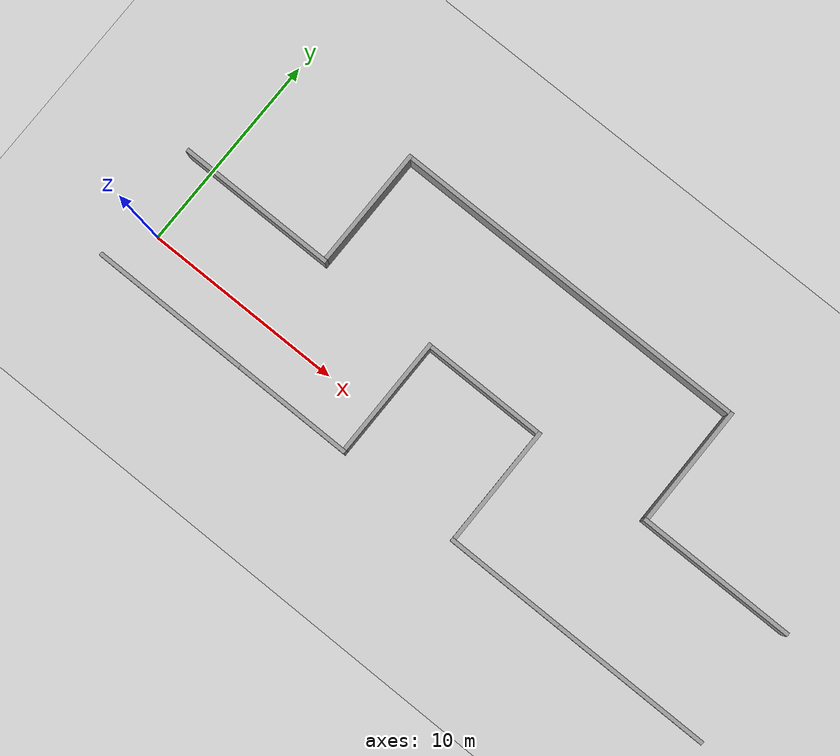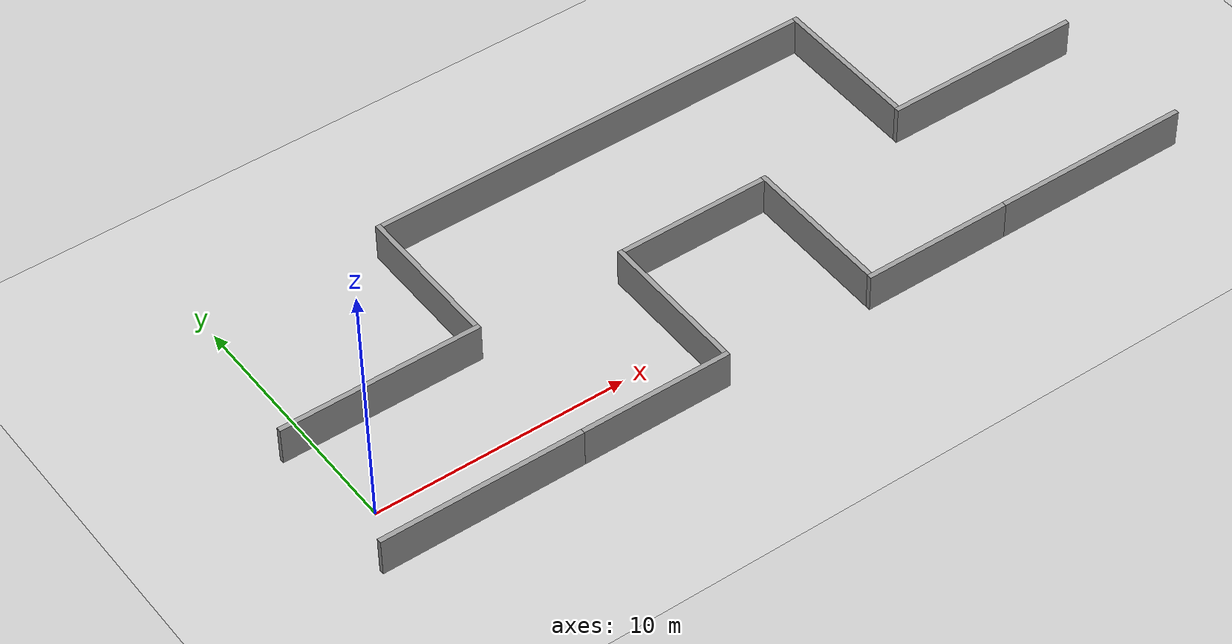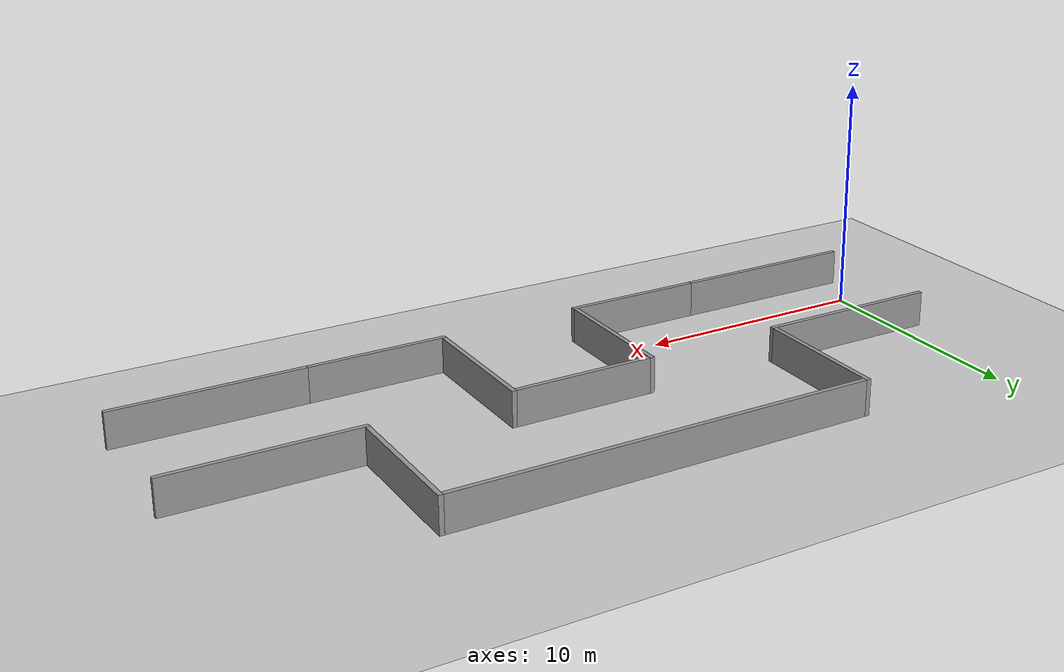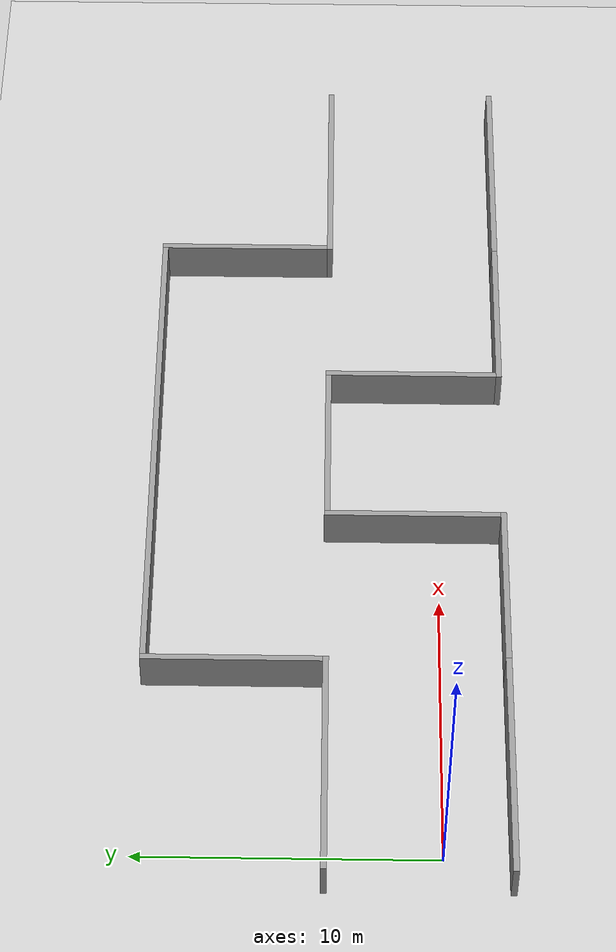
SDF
<sdf version="1.6">
 <world name="default">
  <light name="sun" type="directional">
   <pose>0 0 10 0 -0 0</pose>
   <diffuse>0.8 0.8 0.8 1</diffuse>
   <specular>0.2 0.2 0.2 1</specular>
   <attenuation>
    <range>1000</range>
    <constant>0.9</constant>
    <linear>0.01</linear>
    <quadratic>0.001</quadratic>
   </attenuation>
   <direction>-0.5 0.1 -0.9</direction>
  </light>
  <model name="ground_plane">
   <static>1</static>
   <link name="link">
    <collision name="collision">
     <geometry><plane><normal>0 0 1</normal><size>100 100</size></plane></geometry>
     <surface>
      <contact><collide_bitmask>65535</collide_bitmask></contact>
      <friction><ode><mu>100</mu><mu2>50</mu2></ode></friction>
     </surface>
    </collision>
    <visual name="visual">
     <cast_shadows>0</cast_shadows>
     <geometry><plane><normal>0 0 1</normal><size>100 100</size></plane></geometry>
     <material>
      <script><uri>file://media/materials/scripts/gazebo.material</uri><name>Gazebo/Grey</name></script>
     </material>
    </visual>
   </link>
  </model>
  <gravity>0 0 -9.8</gravity>
  <magnetic_field>6e-06 2.3e-05 -4.2e-05</magnetic_field>
  <atmosphere type="adiabatic"/>
  <physics name="default_physics" default="0" type="ode">
   <max_step_size>0.001</max_step_size>
   <real_time_factor>1</real_time_factor>
   <real_time_update_rate>1000</real_time_update_rate>
  </physics>
  <scene><ambient>0.4 0.4 0.4 1</ambient><background>0.7 0.7 0.7 1</background><shadows>1</shadows></scene>
  <audio><device>default</device></audio>
  <spherical_coordinates>
   <surface_model>EARTH_WGS84</surface_model>
   <latitude_deg>0</latitude_deg>
   <longitude_deg>0</longitude_deg>
   <elevation>0</elevation>
   <heading_deg>0</heading_deg>
  </spherical_coordinates>
  <model name="Corr816">
   <link name="link_1">
    <inertial>
     <mass>1</mass>
     <inertia>
      <ixx>0.166667</ixx>
      <ixy>0</ixy>
      <ixz>0</ixz>
      <iyy>0.166667</iyy>
      <iyz>0</iyz>
      <izz>0.166667</izz>
     </inertia>
    </inertial>
    <pose>-0.206551 0.808921 0 0 -0 0</pose>
    <visual name="visual">
     <geometry><box><size>8 0.2 2</size></box></geometry>
     <material>
      <lighting>1</lighting>
      <script><uri>file://media/materials/scripts/gazebo.material</uri><name>Gazebo/Grey</name></script>
      <shader type="vertex"><normal_map>__default__</normal_map></shader>
      <ambient>0.3 0.3 0.3 1</ambient>
      <diffuse>0.7 0.7 0.7 1</diffuse>
      <specular>0.01 0.01 0.01 1</specular>
      <emissive>0 0 0 1</emissive>
     </material>
    </visual>
    <collision name="collision">
     <geometry><box><size>8 0.2 2</size></box></geometry>
     <surface>
      <friction>
       <ode><mu>1</mu><mu2>1</mu2><fdir1>0 0 0</fdir1><slip1>0</slip1><slip2>0</slip2></ode>
       <torsional>
        <coefficient>1</coefficient>
        <patch_radius>0</patch_radius>
        <surface_radius>0</surface_radius>
        <use_patch_radius>1</use_patch_radius>
        <ode><slip>0</slip></ode>
       </torsional>
      </friction>
      <bounce><restitution_coefficient>0</restitution_coefficient><threshold>1e+06</threshold></bounce>
      <contact>
       <collide_without_contact>0</collide_without_contact>
       <collide_without_contact_bitmask>1</collide_without_contact_bitmask>
       <collide_bitmask>1</collide_bitmask>
       <ode>
        <soft_cfm>0</soft_cfm>
        <soft_erp>0.2</soft_erp>
        <kp>1e+13</kp>
        <kd>1</kd>
        <max_vel>0.01</max_vel>
        <min_depth>0</min_depth>
       </ode>
       <bullet>
        <split_impulse>1</split_impulse>
        <split_impulse_penetration_threshold>-0.01</split_impulse_penetration_threshold>
        <soft_cfm>0</soft_cfm>
        <soft_erp>0.2</soft_erp>
        <kp>1e+13</kp>
        <kd>1</kd>
       </bullet>
      </contact>
     </surface>
    </collision>
   </link>
   <link name="link_1_clone">
    <inertial>
     <mass>1</mass>
     <inertia>
      <ixx>0.166667</ixx>
      <ixy>0</ixy>
      <ixz>0</ixz>
      <iyy>0.166667</iyy>
      <iyz>0</iyz>
      <izz>0.166667</izz>
     </inertia>
    </inertial>
    <pose>25.7934 0.808921 0 0 -0 0</pose>
    <visual name="visual">
     <geometry><box><size>8 0.2 2</size></box></geometry>
     <material>
      <lighting>1</lighting>
      <script><uri>file://media/materials/scripts/gazebo.material</uri><name>Gazebo/Grey</name></script>
      <shader type="vertex"><normal_map>__default__</normal_map></shader>
      <ambient>0.3 0.3 0.3 1</ambient>
      <diffuse>0.7 0.7 0.7 1</diffuse>
      <specular>0.01 0.01 0.01 1</specular>
      <emissive>0 0 0 1</emissive>
     </material>
    </visual>
    <collision name="collision">
     <geometry><box><size>8 0.2 2</size></box></geometry>
     <surface>
      <friction>
       <ode><mu>1</mu><mu2>1</mu2><fdir1>0 0 0</fdir1><slip1>0</slip1><slip2>0</slip2></ode>
       <torsional>
        <coefficient>1</coefficient>
        <patch_radius>0</patch_radius>
        <surface_radius>0</surface_radius>
        <use_patch_radius>1</use_patch_radius>
        <ode><slip>0</slip></ode>
       </torsional>
      </friction>
      <bounce><restitution_coefficient>0</restitution_coefficient><threshold>1e+06</threshold></bounce>
      <contact>
       <collide_without_contact>0</collide_without_contact>
       <collide_without_contact_bitmask>1</collide_without_contact_bitmask>
       <collide_bitmask>1</collide_bitmask>
       <ode>
        <soft_cfm>0</soft_cfm>
        <soft_erp>0.2</soft_erp>
        <kp>1e+13</kp>
        <kd>1</kd>
        <max_vel>0.01</max_vel>
        <min_depth>0</min_depth>
       </ode>
       <bullet>
        <split_impulse>1</split_impulse>
        <split_impulse_penetration_threshold>-0.01</split_impulse_penetration_threshold>
        <soft_cfm>0</soft_cfm>
        <soft_erp>0.2</soft_erp>
        <kp>1e+13</kp>
        <kd>1</kd>
       </bullet>
      </contact>
     </surface>
    </collision>
   </link>
   <link name="link_1_clone_clone">
    <inertial>
     <mass>1</mass>
     <inertia>
      <ixx>0.166667</ixx>
      <ixy>0</ixy>
      <ixz>0</ixz>
      <iyy>0.166667</iyy>
      <iyz>0</iyz>
      <izz>0.166667</izz>
     </inertia>
    </inertial>
    <pose>25.7934 6.80892 0 0 -0 0</pose>
    <visual name="visual">
     <geometry><box><size>8 0.2 2</size></box></geometry>
     <material>
      <lighting>1</lighting>
      <script><uri>file://media/materials/scripts/gazebo.material</uri><name>Gazebo/Grey</name></script>
      <shader type="vertex"><normal_map>__default__</normal_map></shader>
      <ambient>0.3 0.3 0.3 1</ambient>
      <diffuse>0.7 0.7 0.7 1</diffuse>
      <specular>0.01 0.01 0.01 1</specular>
      <emissive>0 0 0 1</emissive>
     </material>
    </visual>
    <collision name="collision">
     <geometry><box><size>8 0.2 2</size></box></geometry>
     <surface>
      <friction>
       <ode><mu>1</mu><mu2>1</mu2><fdir1>0 0 0</fdir1><slip1>0</slip1><slip2>0</slip2></ode>
       <torsional>
        <coefficient>1</coefficient>
        <patch_radius>0</patch_radius>
        <surface_radius>0</surface_radius>
        <use_patch_radius>1</use_patch_radius>
        <ode><slip>0</slip></ode>
       </torsional>
      </friction>
      <bounce><restitution_coefficient>0</restitution_coefficient><threshold>1e+06</threshold></bounce>
      <contact>
       <collide_without_contact>0</collide_without_contact>
       <collide_without_contact_bitmask>1</collide_without_contact_bitmask>
       <collide_bitmask>1</collide_bitmask>
       <ode>
        <soft_cfm>0</soft_cfm>
        <soft_erp>0.2</soft_erp>
        <kp>1e+13</kp>
        <kd>1</kd>
        <max_vel>0.01</max_vel>
        <min_depth>0</min_depth>
       </ode>
       <bullet>
        <split_impulse>1</split_impulse>
        <split_impulse_penetration_threshold>-0.01</split_impulse_penetration_threshold>
        <soft_cfm>0</soft_cfm>
        <soft_erp>0.2</soft_erp>
        <kp>1e+13</kp>
        <kd>1</kd>
       </bullet>
      </contact>
     </surface>
    </collision>
   </link>
   <link name="link_3">
    <inertial>
     <mass>1</mass>
     <inertia>
      <ixx>0.166667</ixx>
      <ixy>0</ixy>
      <ixz>0</ixz>
      <iyy>0.166667</iyy>
      <iyz>0</iyz>
      <izz>0.166667</izz>
     </inertia>
    </inertial>
    <pose>6.79345 0.808921 0 0 -0 0</pose>
    <visual name="visual">
     <geometry><box><size>6 0.2 2</size></box></geometry>
     <material>
      <lighting>1</lighting>
      <script><uri>file://media/materials/scripts/gazebo.material</uri><name>Gazebo/Grey</name></script>
      <shader type="vertex"><normal_map>__default__</normal_map></shader>
      <ambient>0.3 0.3 0.3 1</ambient>
      <diffuse>0.7 0.7 0.7 1</diffuse>
      <specular>0.01 0.01 0.01 1</specular>
      <emissive>0 0 0 1</emissive>
     </material>
    </visual>
    <collision name="collision">
     <geometry><box><size>6 0.2 2</size></box></geometry>
     <surface>
      <friction>
       <ode><mu>1</mu><mu2>1</mu2><fdir1>0 0 0</fdir1><slip1>0</slip1><slip2>0</slip2></ode>
       <torsional>
        <coefficient>1</coefficient>
        <patch_radius>0</patch_radius>
        <surface_radius>0</surface_radius>
        <use_patch_radius>1</use_patch_radius>
        <ode><slip>0</slip></ode>
       </torsional>
      </friction>
      <bounce><restitution_coefficient>0</restitution_coefficient><threshold>1e+06</threshold></bounce>
      <contact>
       <collide_without_contact>0</collide_without_contact>
       <collide_without_contact_bitmask>1</collide_without_contact_bitmask>
       <collide_bitmask>1</collide_bitmask>
       <ode>
        <soft_cfm>0</soft_cfm>
        <soft_erp>0.2</soft_erp>
        <kp>1e+13</kp>
        <kd>1</kd>
        <max_vel>0.01</max_vel>
        <min_depth>0</min_depth>
       </ode>
       <bullet>
        <split_impulse>1</split_impulse>
        <split_impulse_penetration_threshold>-0.01</split_impulse_penetration_threshold>
        <soft_cfm>0</soft_cfm>
        <soft_erp>0.2</soft_erp>
        <kp>1e+13</kp>
        <kd>1</kd>
       </bullet>
      </contact>
     </surface>
    </collision>
   </link>
   <link name="link_3_clone">
    <inertial>
     <mass>1</mass>
     <inertia>
      <ixx>0.166667</ixx>
      <ixy>0</ixy>
      <ixz>0</ixz>
      <iyy>0.166667</iyy>
      <iyz>0</iyz>
      <izz>0.166667</izz>
     </inertia>
    </inertial>
    <pose>18.7934 0.808921 0 0 -0 0</pose>
    <visual name="visual">
     <geometry><box><size>6 0.2 2</size></box></geometry>
     <material>
      <lighting>1</lighting>
      <script><uri>file://media/materials/scripts/gazebo.material</uri><name>Gazebo/Grey</name></script>
      <shader type="vertex"><normal_map>__default__</normal_map></shader>
      <ambient>0.3 0.3 0.3 1</ambient>
      <diffuse>0.7 0.7 0.7 1</diffuse>
      <specular>0.01 0.01 0.01 1</specular>
      <emissive>0 0 0 1</emissive>
     </material>
    </visual>
    <collision name="collision">
     <geometry><box><size>6 0.2 2</size></box></geometry>
     <surface>
      <friction>
       <ode><mu>1</mu><mu2>1</mu2><fdir1>0 0 0</fdir1><slip1>0</slip1><slip2>0</slip2></ode>
       <torsional>
        <coefficient>1</coefficient>
        <patch_radius>0</patch_radius>
        <surface_radius>0</surface_radius>
        <use_patch_radius>1</use_patch_radius>
        <ode><slip>0</slip></ode>
       </torsional>
      </friction>
      <bounce><restitution_coefficient>0</restitution_coefficient><threshold>1e+06</threshold></bounce>
      <contact>
       <collide_without_contact>0</collide_without_contact>
       <collide_without_contact_bitmask>1</collide_without_contact_bitmask>
       <collide_bitmask>1</collide_bitmask>
       <ode>
        <soft_cfm>0</soft_cfm>
        <soft_erp>0.2</soft_erp>
        <kp>1e+13</kp>
        <kd>1</kd>
        <max_vel>0.01</max_vel>
        <min_depth>0</min_depth>
       </ode>
       <bullet>
        <split_impulse>1</split_impulse>
        <split_impulse_penetration_threshold>-0.01</split_impulse_penetration_threshold>
        <soft_cfm>0</soft_cfm>
        <soft_erp>0.2</soft_erp>
        <kp>1e+13</kp>
        <kd>1</kd>
       </bullet>
      </contact>
     </surface>
    </collision>
   </link>
   <link name="link_3_clone_0">
    <inertial>
     <mass>1</mass>
     <inertia>
      <ixx>0.166667</ixx>
      <ixy>0</ixy>
      <ixz>0</ixz>
      <iyy>0.166667</iyy>
      <iyz>0</iyz>
      <izz>0.166667</izz>
     </inertia>
    </inertial>
    <pose>9.69345 3.90892 0 0 -0 1.5708</pose>
    <visual name="visual">
     <geometry><box><size>6 0.2 2</size></box></geometry>
     <material>
      <lighting>1</lighting>
      <script><uri>file://media/materials/scripts/gazebo.material</uri><name>Gazebo/Grey</name></script>
      <shader type="vertex"><normal_map>__default__</normal_map></shader>
      <ambient>0.3 0.3 0.3 1</ambient>
      <diffuse>0.7 0.7 0.7 1</diffuse>
      <specular>0.01 0.01 0.01 1</specular>
      <emissive>0 0 0 1</emissive>
     </material>
    </visual>
    <collision name="collision">
     <geometry><box><size>6 0.2 2</size></box></geometry>
     <surface>
      <friction>
       <ode><mu>1</mu><mu2>1</mu2><fdir1>0 0 0</fdir1><slip1>0</slip1><slip2>0</slip2></ode>
       <torsional>
        <coefficient>1</coefficient>
        <patch_radius>0</patch_radius>
        <surface_radius>0</surface_radius>
        <use_patch_radius>1</use_patch_radius>
        <ode><slip>0</slip></ode>
       </torsional>
      </friction>
      <bounce><restitution_coefficient>0</restitution_coefficient><threshold>1e+06</threshold></bounce>
      <contact>
       <collide_without_contact>0</collide_without_contact>
       <collide_without_contact_bitmask>1</collide_without_contact_bitmask>
       <collide_bitmask>1</collide_bitmask>
       <ode>
        <soft_cfm>0</soft_cfm>
        <soft_erp>0.2</soft_erp>
        <kp>1e+13</kp>
        <kd>1</kd>
        <max_vel>0.01</max_vel>
        <min_depth>0</min_depth>
       </ode>
       <bullet>
        <split_impulse>1</split_impulse>
        <split_impulse_penetration_threshold>-0.01</split_impulse_penetration_threshold>
        <soft_cfm>0</soft_cfm>
        <soft_erp>0.2</soft_erp>
        <kp>1e+13</kp>
        <kd>1</kd>
       </bullet>
      </contact>
     </surface>
    </collision>
   </link>
   <link name="link_3_clone_0_clone">
    <inertial>
     <mass>1</mass>
     <inertia>
      <ixx>0.166667</ixx>
      <ixy>0</ixy>
      <ixz>0</ixz>
      <iyy>0.166667</iyy>
      <iyz>0</iyz>
      <izz>0.166667</izz>
     </inertia>
    </inertial>
    <pose>15.8934 3.90894 0 0 -0 1.5708</pose>
    <visual name="visual">
     <geometry><box><size>6 0.2 2</size></box></geometry>
     <material>
      <lighting>1</lighting>
      <script><uri>file://media/materials/scripts/gazebo.material</uri><name>Gazebo/Grey</name></script>
      <shader type="vertex"><normal_map>__default__</normal_map></shader>
      <ambient>0.3 0.3 0.3 1</ambient>
      <diffuse>0.7 0.7 0.7 1</diffuse>
      <specular>0.01 0.01 0.01 1</specular>
      <emissive>0 0 0 1</emissive>
     </material>
    </visual>
    <collision name="collision">
     <geometry><box><size>6 0.2 2</size></box></geometry>
     <surface>
      <friction>
       <ode><mu>1</mu><mu2>1</mu2><fdir1>0 0 0</fdir1><slip1>0</slip1><slip2>0</slip2></ode>
       <torsional>
        <coefficient>1</coefficient>
        <patch_radius>0</patch_radius>
        <surface_radius>0</surface_radius>
        <use_patch_radius>1</use_patch_radius>
        <ode><slip>0</slip></ode>
       </torsional>
      </friction>
      <bounce><restitution_coefficient>0</restitution_coefficient><threshold>1e+06</threshold></bounce>
      <contact>
       <collide_without_contact>0</collide_without_contact>
       <collide_without_contact_bitmask>1</collide_without_contact_bitmask>
       <collide_bitmask>1</collide_bitmask>
       <ode>
        <soft_cfm>0</soft_cfm>
        <soft_erp>0.2</soft_erp>
        <kp>1e+13</kp>
        <kd>1</kd>
        <max_vel>0.01</max_vel>
        <min_depth>0</min_depth>
       </ode>
       <bullet>
        <split_impulse>1</split_impulse>
        <split_impulse_penetration_threshold>-0.01</split_impulse_penetration_threshold>
        <soft_cfm>0</soft_cfm>
        <soft_erp>0.2</soft_erp>
        <kp>1e+13</kp>
        <kd>1</kd>
       </bullet>
      </contact>
     </surface>
    </collision>
   </link>
   <link name="link_3_clone_1">
    <inertial>
     <mass>1</mass>
     <inertia>
      <ixx>0.166667</ixx>
      <ixy>0</ixy>
      <ixz>0</ixz>
      <iyy>0.166667</iyy>
      <iyz>0</iyz>
      <izz>0.166667</izz>
     </inertia>
    </inertial>
    <pose>12.7934 6.80893 0 0 -0 0</pose>
    <visual name="visual">
     <geometry><box><size>6 0.2 2</size></box></geometry>
     <material>
      <lighting>1</lighting>
      <script><uri>file://media/materials/scripts/gazebo.material</uri><name>Gazebo/Grey</name></script>
      <shader type="vertex"><normal_map>__default__</normal_map></shader>
      <ambient>0.3 0.3 0.3 1</ambient>
      <diffuse>0.7 0.7 0.7 1</diffuse>
      <specular>0.01 0.01 0.01 1</specular>
      <emissive>0 0 0 1</emissive>
     </material>
    </visual>
    <collision name="collision">
     <geometry><box><size>6 0.2 2</size></box></geometry>
     <surface>
      <friction>
       <ode><mu>1</mu><mu2>1</mu2><fdir1>0 0 0</fdir1><slip1>0</slip1><slip2>0</slip2></ode>
       <torsional>
        <coefficient>1</coefficient>
        <patch_radius>0</patch_radius>
        <surface_radius>0</surface_radius>
        <use_patch_radius>1</use_patch_radius>
        <ode><slip>0</slip></ode>
       </torsional>
      </friction>
      <bounce><restitution_coefficient>0</restitution_coefficient><threshold>1e+06</threshold></bounce>
      <contact>
       <collide_without_contact>0</collide_without_contact>
       <collide_without_contact_bitmask>1</collide_without_contact_bitmask>
       <collide_bitmask>1</collide_bitmask>
       <ode>
        <soft_cfm>0</soft_cfm>
        <soft_erp>0.2</soft_erp>
        <kp>1e+13</kp>
        <kd>1</kd>
        <max_vel>0.01</max_vel>
        <min_depth>0</min_depth>
       </ode>
       <bullet>
        <split_impulse>1</split_impulse>
        <split_impulse_penetration_threshold>-0.01</split_impulse_penetration_threshold>
        <soft_cfm>0</soft_cfm>
        <soft_erp>0.2</soft_erp>
        <kp>1e+13</kp>
        <kd>1</kd>
       </bullet>
      </contact>
     </surface>
    </collision>
   </link>
   <link name="link_4">
    <inertial>
     <mass>1</mass>
     <inertia>
      <ixx>0.166667</ixx>
      <ixy>0</ixy>
      <ixz>0</ixz>
      <iyy>0.166667</iyy>
      <iyz>0</iyz>
      <izz>0.166667</izz>
     </inertia>
    </inertial>
    <pose>12.7934 12.8089 0 0 -0 0</pose>
    <visual name="visual">
     <geometry><box><size>18 0.2 2</size></box></geometry>
     <material>
      <lighting>1</lighting>
      <script><uri>file://media/materials/scripts/gazebo.material</uri><name>Gazebo/Grey</name></script>
      <shader type="vertex"><normal_map>__default__</normal_map></shader>
      <ambient>0.3 0.3 0.3 1</ambient>
      <diffuse>0.7 0.7 0.7 1</diffuse>
      <specular>0.01 0.01 0.01 1</specular>
      <emissive>0 0 0 1</emissive>
     </material>
    </visual>
    <collision name="collision">
     <geometry><box><size>18 0.2 2</size></box></geometry>
     <surface>
      <friction>
       <ode><mu>1</mu><mu2>1</mu2><fdir1>0 0 0</fdir1><slip1>0</slip1><slip2>0</slip2></ode>
       <torsional>
        <coefficient>1</coefficient>
        <patch_radius>0</patch_radius>
        <surface_radius>0</surface_radius>
        <use_patch_radius>1</use_patch_radius>
        <ode><slip>0</slip></ode>
       </torsional>
      </friction>
      <bounce><restitution_coefficient>0</restitution_coefficient><threshold>1e+06</threshold></bounce>
      <contact>
       <collide_without_contact>0</collide_without_contact>
       <collide_without_contact_bitmask>1</collide_without_contact_bitmask>
       <collide_bitmask>1</collide_bitmask>
       <ode>
        <soft_cfm>0</soft_cfm>
        <soft_erp>0.2</soft_erp>
        <kp>1e+13</kp>
        <kd>1</kd>
        <max_vel>0.01</max_vel>
        <min_depth>0</min_depth>
       </ode>
       <bullet>
        <split_impulse>1</split_impulse>
        <split_impulse_penetration_threshold>-0.01</split_impulse_penetration_threshold>
        <soft_cfm>0</soft_cfm>
        <soft_erp>0.2</soft_erp>
        <kp>1e+13</kp>
        <kd>1</kd>
       </bullet>
      </contact>
     </surface>
    </collision>
   </link>
   <link name="link_5">
    <inertial>
     <mass>1</mass>
     <inertia>
      <ixx>0.166667</ixx>
      <ixy>0</ixy>
      <ixz>0</ixz>
      <iyy>0.166667</iyy>
      <iyz>0</iyz>
      <izz>0.166667</izz>
     </inertia>
    </inertial>
    <pose>-0.206551 6.80892 0 0 -0 0</pose>
    <visual name="visual">
     <geometry><box><size>8 0.2 2</size></box></geometry>
     <material>
      <lighting>1</lighting>
      <script><uri>file://media/materials/scripts/gazebo.material</uri><name>Gazebo/Grey</name></script>
      <shader type="vertex"><normal_map>__default__</normal_map></shader>
      <ambient>0.3 0.3 0.3 1</ambient>
      <diffuse>0.7 0.7 0.7 1</diffuse>
      <specular>0.01 0.01 0.01 1</specular>
      <emissive>0 0 0 1</emissive>
     </material>
    </visual>
    <collision name="collision">
     <geometry><box><size>8 0.2 2</size></box></geometry>
     <surface>
      <friction>
       <ode><mu>1</mu><mu2>1</mu2><fdir1>0 0 0</fdir1><slip1>0</slip1><slip2>0</slip2></ode>
       <torsional>
        <coefficient>1</coefficient>
        <patch_radius>0</patch_radius>
        <surface_radius>0</surface_radius>
        <use_patch_radius>1</use_patch_radius>
        <ode><slip>0</slip></ode>
       </torsional>
      </friction>
      <bounce><restitution_coefficient>0</restitution_coefficient><threshold>1e+06</threshold></bounce>
      <contact>
       <collide_without_contact>0</collide_without_contact>
       <collide_without_contact_bitmask>1</collide_without_contact_bitmask>
       <collide_bitmask>1</collide_bitmask>
       <ode>
        <soft_cfm>0</soft_cfm>
        <soft_erp>0.2</soft_erp>
        <kp>1e+13</kp>
        <kd>1</kd>
        <max_vel>0.01</max_vel>
        <min_depth>0</min_depth>
       </ode>
       <bullet>
        <split_impulse>1</split_impulse>
        <split_impulse_penetration_threshold>-0.01</split_impulse_penetration_threshold>
        <soft_cfm>0</soft_cfm>
        <soft_erp>0.2</soft_erp>
        <kp>1e+13</kp>
        <kd>1</kd>
       </bullet>
      </contact>
     </surface>
    </collision>
   </link>
   <link name="link_6">
    <inertial>
     <mass>1</mass>
     <inertia>
      <ixx>0.166667</ixx>
      <ixy>0</ixy>
      <ixz>0</ixz>
      <iyy>0.166667</iyy>
      <iyz>0</iyz>
      <izz>0.166667</izz>
     </inertia>
    </inertial>
    <pose>3.69345 9.90892 0 0 -0 1.5708</pose>
    <visual name="visual">
     <geometry><box><size>6 0.2 2</size></box></geometry>
     <material>
      <lighting>1</lighting>
      <script><uri>file://media/materials/scripts/gazebo.material</uri><name>Gazebo/Grey</name></script>
      <shader type="vertex"><normal_map>__default__</normal_map></shader>
      <ambient>0.3 0.3 0.3 1</ambient>
      <diffuse>0.7 0.7 0.7 1</diffuse>
      <specular>0.01 0.01 0.01 1</specular>
      <emissive>0 0 0 1</emissive>
     </material>
    </visual>
    <collision name="collision">
     <geometry><box><size>6 0.2 2</size></box></geometry>
     <surface>
      <friction>
       <ode><mu>1</mu><mu2>1</mu2><fdir1>0 0 0</fdir1><slip1>0</slip1><slip2>0</slip2></ode>
       <torsional>
        <coefficient>1</coefficient>
        <patch_radius>0</patch_radius>
        <surface_radius>0</surface_radius>
        <use_patch_radius>1</use_patch_radius>
        <ode><slip>0</slip></ode>
       </torsional>
      </friction>
      <bounce><restitution_coefficient>0</restitution_coefficient><threshold>1e+06</threshold></bounce>
      <contact>
       <collide_without_contact>0</collide_without_contact>
       <collide_without_contact_bitmask>1</collide_without_contact_bitmask>
       <collide_bitmask>1</collide_bitmask>
       <ode>
        <soft_cfm>0</soft_cfm>
        <soft_erp>0.2</soft_erp>
        <kp>1e+13</kp>
        <kd>1</kd>
        <max_vel>0.01</max_vel>
        <min_depth>0</min_depth>
       </ode>
       <bullet>
        <split_impulse>1</split_impulse>
        <split_impulse_penetration_threshold>-0.01</split_impulse_penetration_threshold>
        <soft_cfm>0</soft_cfm>
        <soft_erp>0.2</soft_erp>
        <kp>1e+13</kp>
        <kd>1</kd>
       </bullet>
      </contact>
     </surface>
    </collision>
   </link>
   <link name="link_6_clone">
    <inertial>
     <mass>1</mass>
     <inertia>
      <ixx>0.166667</ixx>
      <ixy>0</ixy>
      <ixz>0</ixz>
      <iyy>0.166667</iyy>
      <iyz>0</iyz>
      <izz>0.166667</izz>
     </inertia>
    </inertial>
    <pose>21.8935 9.90899 0 0 -0 1.5708</pose>
    <visual name="visual">
     <geometry><box><size>6 0.2 2</size></box></geometry>
     <material>
      <lighting>1</lighting>
      <script><uri>file://media/materials/scripts/gazebo.material</uri><name>Gazebo/Grey</name></script>
      <shader type="vertex"><normal_map>__default__</normal_map></shader>
      <ambient>0.3 0.3 0.3 1</ambient>
      <diffuse>0.7 0.7 0.7 1</diffuse>
      <specular>0.01 0.01 0.01 1</specular>
      <emissive>0 0 0 1</emissive>
     </material>
    </visual>
    <collision name="collision">
     <geometry><box><size>6 0.2 2</size></box></geometry>
     <surface>
      <friction>
       <ode><mu>1</mu><mu2>1</mu2><fdir1>0 0 0</fdir1><slip1>0</slip1><slip2>0</slip2></ode>
       <torsional>
        <coefficient>1</coefficient>
        <patch_radius>0</patch_radius>
        <surface_radius>0</surface_radius>
        <use_patch_radius>1</use_patch_radius>
        <ode><slip>0</slip></ode>
       </torsional>
      </friction>
      <bounce><restitution_coefficient>0</restitution_coefficient><threshold>1e+06</threshold></bounce>
      <contact>
       <collide_without_contact>0</collide_without_contact>
       <collide_without_contact_bitmask>1</collide_without_contact_bitmask>
       <collide_bitmask>1</collide_bitmask>
       <ode>
        <soft_cfm>0</soft_cfm>
        <soft_erp>0.2</soft_erp>
        <kp>1e+13</kp>
        <kd>1</kd>
        <max_vel>0.01</max_vel>
        <min_depth>0</min_depth>
       </ode>
       <bullet>
        <split_impulse>1</split_impulse>
        <split_impulse_penetration_threshold>-0.01</split_impulse_penetration_threshold>
        <soft_cfm>0</soft_cfm>
        <soft_erp>0.2</soft_erp>
        <kp>1e+13</kp>
        <kd>1</kd>
       </bullet>
      </contact>
     </surface>
    </collision>
   </link>
   <joint name="link_1_JOINT_12" type="fixed">
    <parent>link_1</parent>
    <child>link_5</child>
    <physics>
     <ode><limit><cfm>0</cfm><erp>0.2</erp></limit><suspension><cfm>0</cfm><erp>0.2</erp></suspension></ode>
    </physics>
   </joint>
   <joint name="link_1_JOINT_3" type="revolute">
    <parent>link_1</parent>
    <child>link_3</child>
    <axis>
     <xyz>1 0 0</xyz>
     <use_parent_model_frame>0</use_parent_model_frame>
     <limit>
      <lower>-1.79769e+308</lower>
      <upper>1.79769e+308</upper>
      <effort>-1</effort>
      <velocity>-1</velocity>
     </limit>
     <dynamics>
      <spring_reference>0</spring_reference>
      <spring_stiffness>0</spring_stiffness>
      <damping>0</damping>
     </dynamics>
    </axis>
    <physics>
     <ode><limit><cfm>0</cfm><erp>0.2</erp></limit><suspension><cfm>0</cfm><erp>0.2</erp></suspension></ode>
    </physics>
   </joint>
   <joint name="link_1_JOINT_4" type="fixed">
    <parent>link_1</parent>
    <child>link_3</child>
    <physics>
     <ode><limit><cfm>0</cfm><erp>0.2</erp></limit><suspension><cfm>0</cfm><erp>0.2</erp></suspension></ode>
    </physics>
   </joint>
   <joint name="link_1_clone_JOINT_15" type="fixed">
    <parent>link_1_clone</parent>
    <child>link_1_clone_clone</child>
    <physics>
     <ode><limit><cfm>0</cfm><erp>0.2</erp></limit><suspension><cfm>0</cfm><erp>0.2</erp></suspension></ode>
    </physics>
   </joint>
   <joint name="link_3_JOINT_5" type="fixed">
    <parent>link_3</parent>
    <child>link_3_clone_0</child>
    <physics>
     <ode><limit><cfm>0</cfm><erp>0.2</erp></limit><suspension><cfm>0</cfm><erp>0.2</erp></suspension></ode>
    </physics>
   </joint>
   <joint name="link_3_JOINT_9" type="fixed">
    <parent>link_3</parent>
    <child>link_3_clone</child>
    <physics>
     <ode><limit><cfm>0</cfm><erp>0.2</erp></limit><suspension><cfm>0</cfm><erp>0.2</erp></suspension></ode>
    </physics>
   </joint>
   <joint name="link_3_clone_0_JOINT_6" type="fixed">
    <parent>link_3_clone_0</parent>
    <child>link_3_clone_1</child>
    <physics>
     <ode><limit><cfm>0</cfm><erp>0.2</erp></limit><suspension><cfm>0</cfm><erp>0.2</erp></suspension></ode>
    </physics>
   </joint>
   <joint name="link_3_clone_0_JOINT_8" type="fixed">
    <parent>link_3_clone_0</parent>
    <child>link_3_clone_0_clone</child>
    <physics>
     <ode><limit><cfm>0</cfm><erp>0.2</erp></limit><suspension><cfm>0</cfm><erp>0.2</erp></suspension></ode>
    </physics>
   </joint>
   <joint name="link_3_clone_0_clone_JOINT_10" type="fixed">
    <parent>link_3_clone</parent>
    <child>link_1_clone</child>
    <physics>
     <ode><limit><cfm>0</cfm><erp>0.2</erp></limit><suspension><cfm>0</cfm><erp>0.2</erp></suspension></ode>
    </physics>
   </joint>
   <joint name="link_3_clone_1_JOINT_11" type="fixed">
    <parent>link_3_clone_1</parent>
    <child>link_4</child>
    <physics>
     <ode><limit><cfm>0</cfm><erp>0.2</erp></limit><suspension><cfm>0</cfm><erp>0.2</erp></suspension></ode>
    </physics>
   </joint>
   <joint name="link_6_JOINT_13" type="fixed">
    <parent>link_5</parent>
    <child>link_6</child>
    <physics>
     <ode><limit><cfm>0</cfm><erp>0.2</erp></limit><suspension><cfm>0</cfm><erp>0.2</erp></suspension></ode>
    </physics>
   </joint>
   <joint name="link_6_JOINT_14" type="fixed">
    <parent>link_6</parent>
    <child>link_6_clone</child>
    <physics>
     <ode><limit><cfm>0</cfm><erp>0.2</erp></limit><suspension><cfm>0</cfm><erp>0.2</erp></suspension></ode>
    </physics>
   </joint>
   <static>1</static>
   <pose>3 -3 0.5 0 -0 0</pose>
  </model>
 </world>
</sdf>
